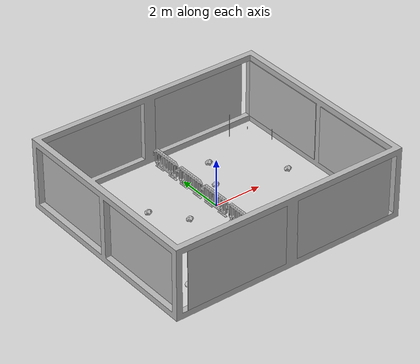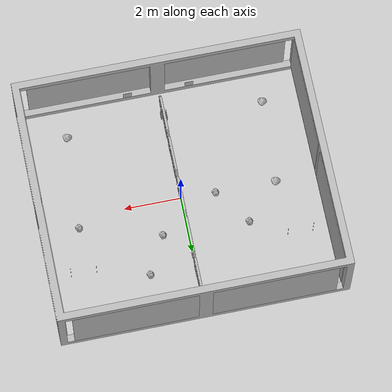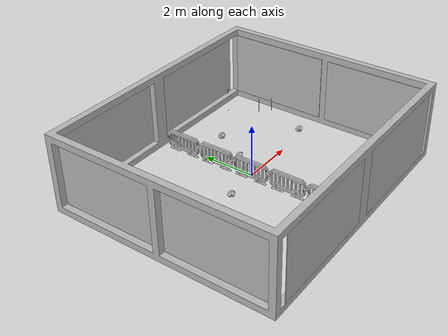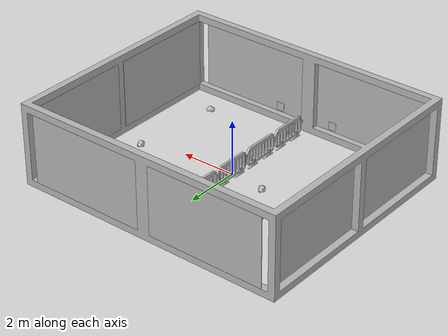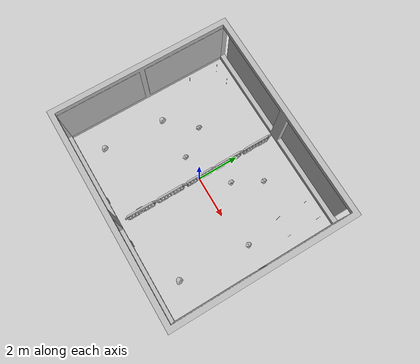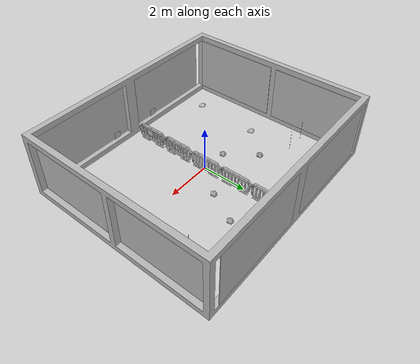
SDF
<sdf version="1.7">
 <world name="default">
  <plugin filename="gz-sim-physics-system" name="gz::sim::systems::Physics"/>
  <plugin filename="gz-sim-user-commands-system" name="gz::sim::systems::UserCommands"/>
  <plugin filename="gz-sim-scene-broadcaster-system" name="gz::sim::systems::SceneBroadcaster"/>
  <plugin filename="gz-sim-sensors-system" name="gz::sim::systems::Sensors">
   <render_engine>ogre2</render_engine>
  </plugin>
  <policies><include_gui_default_plugins>true</include_gui_default_plugins></policies>
  <light name="sun" type="directional">
   <cast_shadows>0</cast_shadows>
   <pose>0 0 10 0 0 0</pose>
   <diffuse>0.4 0.4 0.4 1</diffuse>
   <specular>0.1 0.1 0.1 1</specular>
   <attenuation>
    <range>500</range>
    <constant>0.8</constant>
    <linear>0.02</linear>
    <quadratic>0.001</quadratic>
   </attenuation>
   <direction>0 0 -0.9</direction>
  </light>
  <scene><ambient>0.4 0.4 0.4 1</ambient><shadows>0</shadows></scene>
  <physics type="ode">
   <max_step_size>0.01</max_step_size>
   <real_time_factor>1</real_time_factor>
   <real_time_update_rate>100</real_time_update_rate>
   <ode><constraints><erp>0.8</erp><contact_surface_layer>0.1</contact_surface_layer></constraints></ode>
  </physics>
  <gravity>0 0 -9.81</gravity>
  <model name="arena_rods">
   <pose>0 0 1.248 0 0 0</pose>
   <static>1</static>
   <link name="link">
    <visual name="arena_rods">
     <geometry><mesh><uri>model://ucf_arena/arena_rods/arena_rods.stl</uri><scale>1 1 1</scale></mesh></geometry>
    </visual>
    <collision name="arena_rods_collision">
     <geometry><mesh><uri>model://ucf_arena/arena_rods/arena_rods.stl</uri><scale>1 1 1</scale></mesh></geometry>
     <surface><friction><ode><mu>0.8</mu><mu2>0.8</mu2></ode></friction></surface>
    </collision>
   </link>
  </model>
  <model name="arena_barriers">
   <pose>0 1.5 1.248 0 0 0</pose>
   <static>1</static>
   <link name="link">
    <visual name="arena_barriers">
     <geometry>
      <mesh><uri>model://ucf_arena/arena_barriers/arena_barriers.stl</uri><scale>1 1 1</scale></mesh>
     </geometry>
    </visual>
    <collision name="arena_barriers_collision">
     <geometry>
      <mesh><uri>model://ucf_arena/arena_barriers/arena_barriers.stl</uri><scale>1 1 1</scale></mesh>
     </geometry>
     <surface><friction><ode><mu>0.8</mu><mu2>0.8</mu2></ode></friction></surface>
    </collision>
   </link>
  </model>
  <model name="arena_walls">
   <pose>0 0 1.248 0 0 0</pose>
   <static>1</static>
   <link name="link">
    <visual name="arena_walls">
     <geometry><mesh><uri>model://ucf_arena/arena_walls/arena_walls.stl</uri><scale>1 1 1</scale></mesh></geometry>
    </visual>
    <collision name="arena_walls_collision">
     <geometry><mesh><uri>model://ucf_arena/arena_walls/arena_walls.stl</uri><scale>1 1 1</scale></mesh></geometry>
     <surface><friction><ode><mu>0.8</mu><mu2>0.8</mu2></ode></friction></surface>
    </collision>
   </link>
  </model>
  <model name="arena_windows">
   <pose>0 0 1.248 0 0 0</pose>
   <static>1</static>
   <link name="link">
    <visual name="arena_windows">
     <geometry>
      <mesh><uri>model://ucf_arena/arena_windows/arena_windows.stl</uri><scale>1 1 1</scale></mesh>
     </geometry>
    </visual>
    <collision name="arena_windows_collision">
     <geometry>
      <mesh><uri>model://ucf_arena/arena_windows/arena_windows.stl</uri><scale>1 1 1</scale></mesh>
     </geometry>
     <surface><friction><ode><mu>0.8</mu><mu2>0.8</mu2></ode></friction></surface>
    </collision>
   </link>
  </model>
  <model name="rock_round_1">
   <pose>-3.38496 -0.017282 -0.13 0 0 0.846674</pose>
   <static>1</static>
   <link name="link">
    <visual name="rock_round">
     <geometry><mesh><uri>model://rock_round/rock_round.stl</uri><scale>1 1 1</scale></mesh></geometry>
    </visual>
    <collision name="rock_round_1_collision">
     <geometry><mesh><uri>model://rock_round/rock_round.stl</uri><scale>1 1 1</scale></mesh></geometry>
    </collision>
   </link>
  </model>
  <model name="rock_rough_1">
   <pose>-2.13309 1.26296 -0.13 0.002665 -0.015178 -2.17369</pose>
   <self_collide>1</self_collide>
   <static>1</static>
   <link name="link">
    <inertial>
     <mass>5</mass>
     <inertia><ixx>3</ixx><iyy>3</iyy><izz>3</izz><ixy>0</ixy><ixz>0</ixz><iyz>0</iyz></inertia>
    </inertial>
    <visual name="rock_rough_1">
     <geometry><mesh><uri>model://rock_rough/rock_rough.stl</uri><scale>1 1 1</scale></mesh></geometry>
    </visual>
    <collision name="rock_rough_1_collision">
     <geometry><mesh><uri>model://rock_rough/rock_rough.stl</uri><scale>1 1 1</scale></mesh></geometry>
     <surface><friction><ode><mu>1.5</mu><mu2>1.5</mu2></ode></friction></surface>
    </collision>
    <velocity_decay><linear>0.3</linear><angular>0.3</angular></velocity_decay>
    <self_collide>1</self_collide>
   </link>
  </model>
  <model name="rock_rough_2">
   <pose>-1.19102 -0.009563 -0.13 0.002665 -0.015178 -2.17369</pose>
   <self_collide>1</self_collide>
   <static>1</static>
   <link name="link">
    <inertial>
     <mass>5</mass>
     <inertia><ixx>3</ixx><iyy>3</iyy><izz>3</izz><ixy>0</ixy><ixz>0</ixz><iyz>0</iyz></inertia>
    </inertial>
    <visual name="rock_rough_2">
     <geometry><mesh><uri>model://rock_rough/rock_rough.stl</uri><scale>1 1 1</scale></mesh></geometry>
    </visual>
    <collision name="rock_rough_2_collision">
     <geometry><mesh><uri>model://rock_rough/rock_rough.stl</uri><scale>1 1 1</scale></mesh></geometry>
     <surface><friction><ode><mu>1.5</mu><mu2>1.5</mu2></ode></friction></surface>
    </collision>
    <velocity_decay><linear>0.3</linear><angular>0.3</angular></velocity_decay>
    <self_collide>1</self_collide>
   </link>
  </model>
  <model name="rock_round_2">
   <pose>-3.54076 -3.02333 -0.13 0 0 0.846674</pose>
   <static>1</static>
   <link name="link">
    <visual name="rock_round">
     <geometry><mesh><uri>model://rock_round/rock_round.stl</uri><scale>1 1 1</scale></mesh></geometry>
    </visual>
    <collision name="rock_round_2_collision">
     <geometry><mesh><uri>model://rock_round/rock_round.stl</uri><scale>1 1 1</scale></mesh></geometry>
    </collision>
   </link>
  </model>
  <model name="rock_round_3">
   <pose>3.45882 -3.05383 -0.13 0 0 0.846674</pose>
   <static>1</static>
   <link name="link">
    <visual name="rock_round_3">
     <geometry><mesh><uri>model://rock_round/rock_round.stl</uri><scale>1 1 1</scale></mesh></geometry>
    </visual>
    <collision name="rock_round_3_collision">
     <geometry><mesh><uri>model://rock_round/rock_round.stl</uri><scale>1 1 1</scale></mesh></geometry>
    </collision>
   </link>
  </model>
  <model name="rock_rough_4">
   <pose>3.71773 0.333957 -0.13 0.002665 -0.015178 -2.17369</pose>
   <self_collide>1</self_collide>
   <static>1</static>
   <link name="link">
    <inertial>
     <mass>5</mass>
     <inertia><ixx>3</ixx><iyy>3</iyy><izz>3</izz><ixy>0</ixy><ixz>0</ixz><iyz>0</iyz></inertia>
    </inertial>
    <visual name="rock_rough_4">
     <geometry><mesh><uri>model://rock_rough/rock_rough.stl</uri><scale>1 1 1</scale></mesh></geometry>
    </visual>
    <collision name="rock_rough_4_collision">
     <geometry><mesh><uri>model://rock_rough/rock_rough.stl</uri><scale>1 1 1</scale></mesh></geometry>
     <surface><friction><ode><mu>1.5</mu><mu2>1.5</mu2></ode></friction></surface>
    </collision>
    <velocity_decay><linear>0.3</linear><angular>0.3</angular></velocity_decay>
    <self_collide>1</self_collide>
   </link>
  </model>
  <model name="rock_rough_5">
   <pose>1.61448 2.48544 -0.13 0.002665 -0.015178 -2.17369</pose>
   <self_collide>1</self_collide>
   <static>1</static>
   <link name="link">
    <inertial>
     <mass>5</mass>
     <inertia><ixx>3</ixx><iyy>3</iyy><izz>3</izz><ixy>0</ixy><ixz>0</ixz><iyz>0</iyz></inertia>
    </inertial>
    <visual name="rock_rough_5">
     <geometry><mesh><uri>model://rock_rough/rock_rough.stl</uri><scale>1 1 1</scale></mesh></geometry>
    </visual>
    <collision name="rock_rough_5_collision">
     <geometry><mesh><uri>model://rock_rough/rock_rough.stl</uri><scale>1 1 1</scale></mesh></geometry>
     <surface><friction><ode><mu>1.5</mu><mu2>1.5</mu2></ode></friction></surface>
    </collision>
    <velocity_decay><linear>0.3</linear><angular>0.3</angular></velocity_decay>
    <self_collide>1</self_collide>
   </link>
  </model>
  <model name="rock_rough_6">
   <pose>0.912668 1.16155 -0.13 0.002665 -0.015178 -2.17369</pose>
   <self_collide>1</self_collide>
   <static>1</static>
   <link name="link">
    <inertial>
     <mass>5</mass>
     <inertia><ixx>3</ixx><iyy>3</iyy><izz>3</izz><ixy>0</ixy><ixz>0</ixz><iyz>0</iyz></inertia>
    </inertial>
    <visual name="rock_rough_6">
     <geometry><mesh><uri>model://rock_rough/rock_rough.stl</uri><scale>1 1 1</scale></mesh></geometry>
    </visual>
    <collision name="rock_rough_6_collision">
     <geometry><mesh><uri>model://rock_rough/rock_rough.stl</uri><scale>1 1 1</scale></mesh></geometry>
     <surface><friction><ode><mu>1.5</mu><mu2>1.5</mu2></ode></friction></surface>
    </collision>
    <velocity_decay><linear>0.3</linear><angular>0.3</angular></velocity_decay>
    <self_collide>1</self_collide>
   </link>
  </model>
  <model name="tag_36_11_00011_1">
   <pose>1.1 -4.0 0.4 1.58 0 0</pose>
   <static>1</static>
   <link name="link">
    <visual name="tag_36_11_00011_1">
     <geometry><box><size>0.3 0.3 0.005</size></box></geometry>
     <material>
      <script>
       <uri>model://apriltags/tag_36_11_00011/materials/scripts</uri>
       <uri>model://apriltags/tag_36_11_00011/materials/textures</uri>
       <name>tag_36_11_00011</name>
      </script>
     </material>
    </visual>
    <collision name="tag_36_11_00011_1_collision">
     <geometry><box><size>0.3 0.3 0.005</size></box></geometry>
    </collision>
   </link>
  </model>
  <model name="tag_36_11_00007_1">
   <pose>0.1 -3.0 0.4 0 -1.58 0</pose>
   <static>1</static>
   <link name="link">
    <visual name="tag_36_11_00007_1">
     <geometry><box><size>0.3 0.3 0.005</size></box></geometry>
     <material>
      <script>
       <uri>model://apriltags/tag_36_11_00007/materials/scripts</uri>
       <uri>model://apriltags/tag_36_11_00007/materials/textures</uri>
       <name>tag_36_11_00007</name>
      </script>
     </material>
    </visual>
    <collision name="tag_36_11_00007_1_collision">
     <geometry><box><size>0.3 0.3 0.005</size></box></geometry>
    </collision>
   </link>
  </model>
  <model name="tag_36_11_00011_2">
   <pose>-1.1 -4.0 0.4 1.58 0 0</pose>
   <static>1</static>
   <link name="link">
    <visual name="tag_36_11_00011_2">
     <geometry><box><size>0.3 0.3 0.005</size></box></geometry>
     <material>
      <script>
       <uri>model://apriltags/tag_36_11_00011/materials/scripts</uri>
       <uri>model://apriltags/tag_36_11_00011/materials/textures</uri>
       <name>tag_36_11_00011</name>
      </script>
     </material>
    </visual>
    <collision name="tag_36_11_00011_2_collision">
     <geometry><box><size>0.3 0.3 0.005</size></box></geometry>
    </collision>
   </link>
  </model>
  <model name="tag_36_11_00007_2">
   <pose>-0.1 -3.0 0.4 0 -1.58 0</pose>
   <static>1</static>
   <link name="link">
    <visual name="tag_36_11_00007_2">
     <geometry><box><size>0.3 0.3 0.005</size></box></geometry>
     <material>
      <script>
       <uri>model://apriltags/tag_36_11_00007/materials/scripts</uri>
       <uri>model://apriltags/tag_36_11_00007/materials/textures</uri>
       <name>tag_36_11_00007</name>
      </script>
     </material>
    </visual>
    <collision name="tag_36_11_00007_2_collision">
     <geometry><box><size>0.3 0.3 0.005</size></box></geometry>
    </collision>
   </link>
  </model>
 </world>
</sdf>
